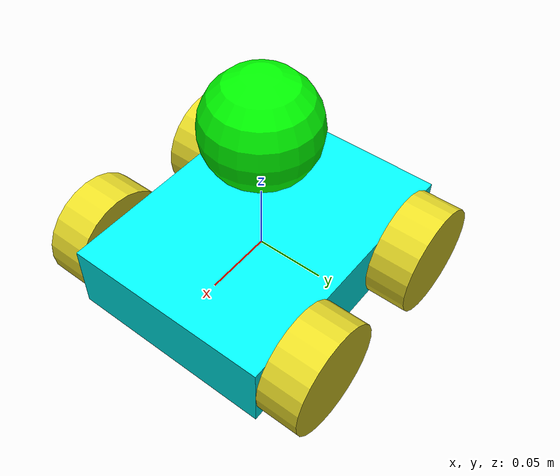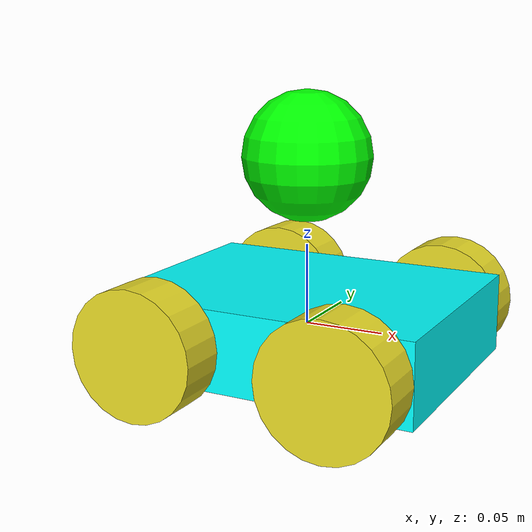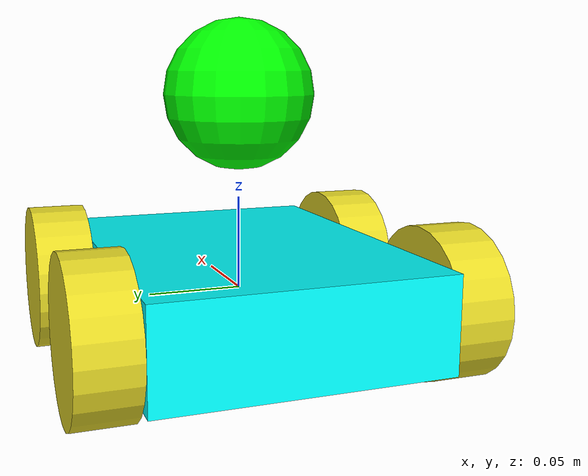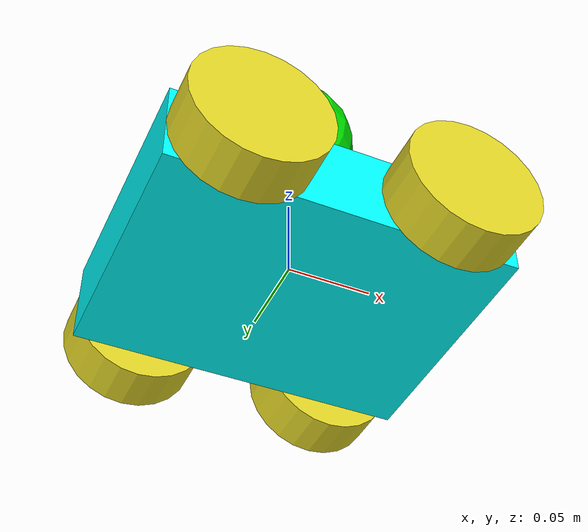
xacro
<?xml version='1.0'?>

<robot name="robot" xmlns:xacro="http://www.ros.org/wiki/xacro">

  <xacro:property name="ball_radius" value="0.04"/>
  <xacro:property name="ball_mass" value="0.01"/>
  <xacro:property name="camera_width" value="0.02"/>
  <xacro:property name="camera_length" value="0.02"/>
  <xacro:property name="camera_height" value="0.01"/>
  <xacro:property name="camera_mass" value="0.01"/>
  <xacro:property name="chassis_width" value="0.15"/>
  <xacro:property name="chassis_length" value="0.2"/>
  <xacro:property name="chassis_height" value="0.05"/>
  <xacro:property name="chassis_mass" value="0.5"/>
  <xacro:property name="wheel_radius" value="0.04"/>
  <xacro:property name="wheel_width" value="0.03"/>
  <xacro:property name="wheel_mass" value="0.025"/>

  <xacro:include filename="$(find smartcarts)/urdf/macros.xacro"/>
  <xacro:include filename="$(find smartcarts)/urdf/materials.xacro"/>

  <link name='chassis'>
    <xacro:box_inertial name="chassis" m="${chassis_mass}" x="${chassis_length}" y="${chassis_width}" z="${chassis_height}"/>
    <collision name='chassis_collision'>
      <geometry>
        <box size="${chassis_length} ${chassis_width} ${chassis_height}"/>
      </geometry>
    </collision>
    <visual name='chassis_visual'>
      <origin xyz="0 0 0" rpy=" 0 0 0"/>
      <geometry>
        <box size="${chassis_length} ${chassis_width} ${chassis_height}"/>
      </geometry>
      <material name="Cyan">
        <color rgba="0 1.0 1.0 1.0"/>
      </material>
    </visual>
  </link>

  <link name='ball'>
    <xacro:sphere_inertial name="ball" m="${ball_mass}" r="${ball_radius}"/>
    <collision name='ball_collision'>
      <geometry>
        <box size="${ball_radius} ${ball_radius} ${ball_radius}"/>
      </geometry>
    </collision>
    <visual name='ball_visual'>
      <origin xyz="0 0 0" rpy=" 0 0 0"/>
      <geometry>
        <sphere radius="${ball_radius}"/>
      </geometry>
      <material name="Red">
        <color rgba="0 1.0 0.0 0.0"/>
      </material>
    </visual>
  </link>

  <link name='wheel_FR'>
    <xacro:cylinder_inertial name="wheel_FR" m="${wheel_mass}" r="${wheel_radius}" h="${wheel_width}"/>
    <collision name='wheel_FR_collision'>
      <origin xyz="0 0 0" rpy="1.5708 0 0"/>
      <geometry>
        <cylinder radius="${wheel_radius}" length="${wheel_width}"/>
      </geometry>
    </collision>
    <visual name='wheel_FR_visual'>
      <origin xyz="0 0 0" rpy="1.5708 0 0"/>
      <geometry>
        <cylinder radius="${wheel_radius}" length="${wheel_width}"/>
      </geometry>
    </visual>
  </link>

  <link name='wheel_FL'>
    <xacro:cylinder_inertial name="wheel_FL" m="${wheel_mass}" r="${wheel_radius}" h="${wheel_width}"/>
    <collision name='wheel_FL_collision'>
      <origin xyz="0 0 0" rpy="1.5708 0 0"/>
      <geometry>
        <cylinder radius="${wheel_radius}" length="${wheel_width}"/>
      </geometry>
    </collision>
    <visual name='wheel_FL_visual'>
      <origin xyz="0 0 0" rpy="1.5708 0 0"/>
      <geometry>
        <cylinder radius="${wheel_radius}" length="${wheel_width}"/>
      </geometry>
    </visual>
  </link>

  <link name='wheel_RR'>
    <xacro:cylinder_inertial name="wheel_RR" m="${wheel_mass}" r="${wheel_radius}" h="${wheel_width}"/>
    <collision name='wheel_RR_collision'>
      <origin xyz="0 0 0" rpy="1.5708 0 0"/>
      <geometry>
        <cylinder radius="${wheel_radius}" length="${wheel_width}"/>
      </geometry>
    </collision>
    <visual name='wheel_RR_visual'>
      <origin xyz="0 0 0" rpy="1.5708 0 0"/>
      <geometry>
        <cylinder radius="${wheel_radius}" length="${wheel_width}"/>
      </geometry>
    </visual>
  </link>

  <link name='wheel_RL'>
    <xacro:cylinder_inertial name="wheel_RL" m="${wheel_mass}" r="${wheel_radius}" h="${wheel_width}"/>
    <collision name='wheel_RL_collision'>
      <origin xyz="0 0 0" rpy="1.5708 0 0"/>
      <geometry>
        <cylinder radius="${wheel_radius}" length="${wheel_width}"/>
      </geometry>
    </collision>
    <visual name='wheel_RL_visual'>
      <origin xyz="0 0 0" rpy="1.5708 0 0"/>
      <geometry>
        <cylinder radius="${wheel_radius}" length="${wheel_width}"/>
      </geometry>
    </visual>
  </link>

  <link name="imu_link">
    <inertial>
      <mass value="0.001"/>
      <origin rpy="0 0 0" xyz="0 0 0"/>
      <inertia ixx="0.0001" ixy="0" ixz="0" iyy="0.000001" iyz="0" izz="0.0001"/>
    </inertial>
    <visual>
      <origin rpy="0 0 0" xyz="0 0 0"/>
      <geometry>
        <box size="0.001 0.001 0.001"/>
      </geometry>
    </visual>
    <collision>
      <origin rpy="0 0 0" xyz="0 0 0"/>
      <geometry>
        <box size=".001 .001 .001"/>
      </geometry>
    </collision>
  </link>

  <joint name="ball_joint" type="continuous">
    <parent link="chassis"/>
    <child link="ball"/>
    <origin xyz="0 0 ${chassis_height*2+camera_height/2}"/>
  </joint>

  <joint name="wheel_FR_joint" type="continuous">
    <parent link="chassis"/>
    <child link="wheel_FR"/>
    <origin xyz="${chassis_length/2-wheel_radius} -${chassis_width/2+wheel_width/2} 0"
            rpy="0 0 0"/>
    <axis xyz="0 1 0"/>
  </joint>

  <joint name="wheel_FL_joint" type="continuous">
    <parent link="chassis"/>
    <child link="wheel_FL"/>
    <origin xyz="${chassis_length/2-wheel_radius} ${chassis_width/2+wheel_width/2} 0"
            rpy="0 0 0"/>
    <axis xyz="0 1 0"/>
  </joint>

  <joint name="wheel_RR_joint" type="continuous">
    <parent link="chassis"/>
    <child link="wheel_RR"/>
    <origin xyz="-${chassis_length/2-wheel_radius} -${chassis_width/2+wheel_width/2} 0"
            rpy="0 0 0"/>
    <axis xyz="0 1 0"/>
  </joint>

  <joint name="wheel_RL_joint" type="continuous">
    <parent link="chassis"/>
    <child link="wheel_RL"/>
    <origin xyz="-${chassis_length/2-wheel_radius} ${chassis_width/2+wheel_width/2} 0"
            rpy="0 0 0"/>
    <axis xyz="0 1 0"/>
  </joint>

  <joint name="imu_link" type="fixed">
    <axis xyz="1 0 0"/>
    <origin xyz="0 0 0"/>
    <parent link="chassis"/>
    <child link="imu_link"/>
  </joint>

  <gazebo reference="chassis">
    <material>Gazebo/Grey</material>
  </gazebo>

  <gazebo reference="ball">
    <material>Gazebo/Red</material>
  </gazebo>

  <gazebo reference="camera_link">
    <material>Gazebo/Blue</material>
  </gazebo>

  <gazebo reference="wheel_FL">
    <material>Gazebo/Yellow</material>
  </gazebo>

  <gazebo reference="wheel_FR">
    <material>Gazebo/Yellow</material>
  </gazebo>

  <gazebo reference="wheel_RL">
    <material>Gazebo/Yellow</material>
  </gazebo>

  <gazebo reference="wheel_RR">
    <material>Gazebo/Yellow</material>
  </gazebo>

  <gazebo>

    <plugin name="skid_steer_drive_controller" filename="libgazebo_ros_skid_steer_drive.so">
      <updateRate>100.0</updateRate>
      <leftFrontJoint>wheel_FL_joint</leftFrontJoint>
      <rightFrontJoint>wheel_FR_joint</rightFrontJoint>
      <leftRearJoint>wheel_RL_joint</leftRearJoint>
      <rightRearJoint>wheel_RR_joint</rightRearJoint>
      <wheelSeparation>0.4</wheelSeparation>
      <wheelDiameter>0.215</wheelDiameter>
      <robotBaseFrame>chassis</robotBaseFrame>
      <torque>20</torque>
      <topicName>cmd_vel</topicName>
      <covariance_x>0.01</covariance_x>
      <covariance_y>0.01</covariance_y>
      <covariance_yaw>0.1</covariance_yaw>
      <broadcastTF>false</broadcastTF>
    </plugin>

    <plugin name="p3d_base_controller" filename="libgazebo_ros_p3d.so">
      <alwaysOn>true</alwaysOn>
      <updateRate>50.0</updateRate>
      <bodyName>chassis</bodyName>
      <topicName>ground_truth/state</topicName>
      <gaussianNoise>0.01</gaussianNoise>
      <frameName>chassis</frameName>
      <xyzOffset>0 0 0</xyzOffset>
      <rpyOffset>0 0 0</rpyOffset>
    </plugin>
  </gazebo>

  <gazebo reference="imu_link">
    <gravity>true</gravity>
    <sensor name="imu_sensor" type="imu">
      <always_on>true</always_on>
      <update_rate>30</update_rate>
      <visualize>true</visualize>
      <topic>__default_topic__</topic>
      <plugin filename="libgazebo_ros_imu_sensor.so" name="imu_plugin">
        <topicName>imu</topicName>
        <bodyName>imu_link</bodyName>
        <updateRateHZ>30</updateRateHZ>
        <gaussianNoise>0.5</gaussianNoise>
        <xyzOffset>0 0 0</xyzOffset>
        <rpyOffset>0 0 0</rpyOffset>
        <frameName>imu_link</frameName>
        <initialOrientationAsReference>false</initialOrientationAsReference>
      </plugin>
      <pose>0 0 0 0 0 0</pose>
    </sensor>
  </gazebo>

</robot>
